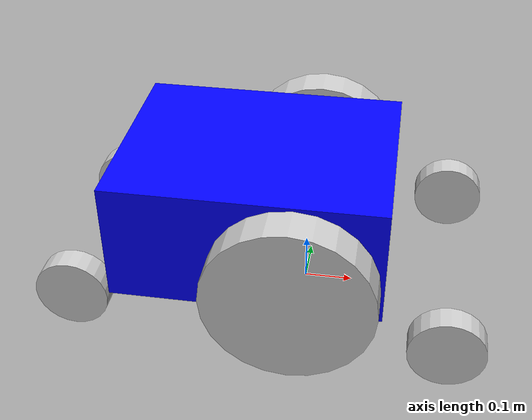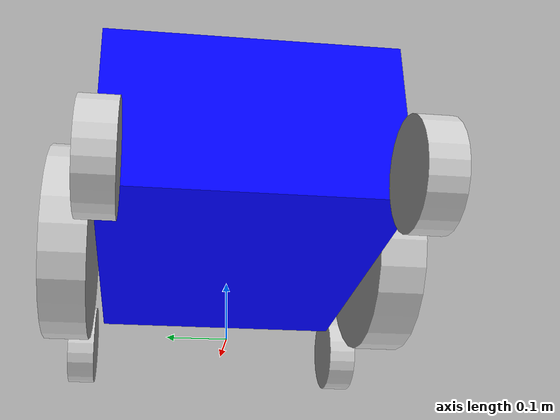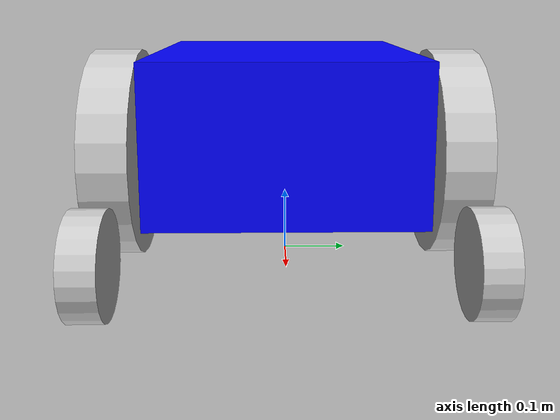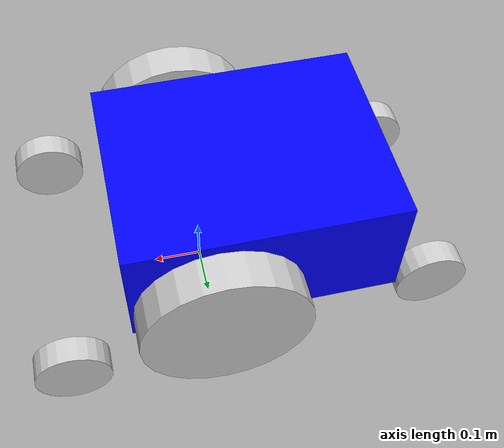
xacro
<?xml version="1.0"?>
<robot xmlns:xacro="http://www.ros.org/wiki/xacro">

    <!-- Imports -->
    <xacro:include filename="params.xacro" />
    <xacro:include filename="wheels.xacro" />
    <xacro:include filename="inertial_macros.xacro" />

    <!-- Materials -->
    <material name="plastic_shell">
        <color rgba="0 0 1 1" />
    </material>

    <!-- Base link -->
    <link name="base_footprint"></link>
    <link name="base_link"></link>

    <joint name="footprint_joint" type="fixed">
        <parent link="base_footprint"/>
        <child link="base_link"/>
        <origin xyz="0 0 ${drive_wheel_radius}"/>
    </joint>

    <!-- Chassis -->
    <link name="chassis">
        <visual>
            <origin xyz="0 0 0"/>
            <geometry>
                <box size="${chassis_length} ${chassis_width} ${chassis_height}"/>
            </geometry>
            <material name="plastic_shell"/>
        </visual>
        <collision>
            <origin xyz="0 0 0"/>
            <geometry>
                <box size="${chassis_length} ${chassis_width} ${chassis_height}"/>
            </geometry>
        </collision>
        <xacro:inertial_box mass="50.0" x="${chassis_length}" y="${chassis_width}" z="${chassis_height}">
            <origin xyz="0 0 0" rpy="0 0 0" />
        </xacro:inertial_box>
    </link>

    <joint name="chassis_joint" type="fixed">
        <parent link="base_link"/>
        <child link="chassis"/>
        <origin xyz="${chassis_X_offset} 0 ${chassis_height/2 - drive_wheel_radius + chassis_Z_offset}"/>
    </joint>

    <!-- Drive Wheels -->
    <xacro:drive_wheel name="drive_wheel_L"></xacro:drive_wheel>

    <joint name="drive_wheel_L_joint" type="continuous">
        <parent link="base_link"/>
        <child link="drive_wheel_L"/>
        <origin xyz="0 ${drive_wheels_Y_spacing/2} 0" rpy="0 0 0" />
        <axis xyz="0 1 0"/>
    </joint>

    <xacro:drive_wheel name="drive_wheel_R"></xacro:drive_wheel>

    <joint name="drive_wheel_R_joint" type="continuous">
        <parent link="base_link"/>
        <child link="drive_wheel_R"/>
        <origin xyz="0 -${drive_wheels_Y_spacing/2} 0" rpy="${pi} 0 0" />
        <axis xyz="0 -1 0"/>
    </joint>

    <!-- Caster Wheels -->
    <xacro:caster_wheel name="caster_wheel_FL"></xacro:caster_wheel>

    <joint name="caster_wheel_FL_joint" type="fixed">
        <parent link="base_link"/>
        <child link="caster_wheel_FL"/>
        <origin xyz="${caster_wheels_F_X_offset} ${caster_wheels_F_Y_spacing/2} ${-drive_wheel_radius + caster_wheel_radius + caster_wheel_Z_offset + 0.001}" rpy="0 0 0" />
    </joint>

    <xacro:caster_wheel name="caster_wheel_FR"></xacro:caster_wheel>

    <joint name="caster_wheel_FR_joint" type="fixed">
        <parent link="base_link"/>
        <child link="caster_wheel_FR"/>
        <origin xyz="${caster_wheels_F_X_offset} -${caster_wheels_F_Y_spacing/2} ${-drive_wheel_radius + caster_wheel_radius + caster_wheel_Z_offset + 0.001}" rpy="0 0 0" />
    </joint>

    <xacro:caster_wheel name="caster_wheel_RL"></xacro:caster_wheel>

    <joint name="caster_wheel_RL_joint" type="fixed">
        <parent link="base_link"/>
        <child link="caster_wheel_RL"/>
        <origin xyz="${caster_wheels_R_X_offset} ${caster_wheels_R_Y_spacing/2} ${-drive_wheel_radius + caster_wheel_radius + caster_wheel_Z_offset + 0.001}" rpy="0 0 0" />
    </joint>

    <xacro:caster_wheel name="caster_wheel_RR"></xacro:caster_wheel>

    <joint name="caster_wheel_RR_joint" type="fixed">
        <parent link="base_link"/>
        <child link="caster_wheel_RR"/>
        <origin xyz="${caster_wheels_R_X_offset} -${caster_wheels_R_Y_spacing/2} ${-drive_wheel_radius + caster_wheel_radius + caster_wheel_Z_offset + 0.001}" rpy="0 0 0" />
    </joint>

</robot>

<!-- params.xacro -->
<robot xmlns:xacro="http://www.ros.org/wiki/xacro">

    <!-- WHEELS -->
    <xacro:property name="drive_wheel_radius" value="0.1685" />
    <xacro:property name="drive_wheel_thickness" value="0.075" />
    <xacro:property name="caster_wheel_radius" value="0.075" />
    <xacro:property name="caster_wheel_thickness" value="0.05" />
    <xacro:property name="caster_wheel_X_offset" value="0.05" />
    <xacro:property name="caster_wheel_Z_offset" value="0.09" />

    <!-- DRIVEBASE -->
    <xacro:property name="chassis_width" value="0.43" />
    <xacro:property name="chassis_length" value="0.55" />
    <xacro:property name="chassis_height" value="0.25" />
    <xacro:property name="chassis_X_offset" value="-0.1" />
    <xacro:property name="chassis_Z_offset" value="0.08" />
    <xacro:property name="drive_wheels_Y_spacing" value="0.54" />
    <xacro:property name="caster_wheels_F_Y_spacing" value="0.52" />
    <xacro:property name="caster_wheels_R_Y_spacing" value="0.405" />
    <xacro:property name="caster_wheels_F_X_offset" value="0.35" />
    <xacro:property name="caster_wheels_R_X_offset" value="-0.4" />

    <!--LIDAR-->
    <xacro:property name="lidar_pole_length" value="0.0365" />
    <xacro:property name="lidar_pole_width" value="0.0365" />
    <xacro:property name="lidar_pole_height" value="1.041" />

    <xacro:property name="lidar_pole_x_offset" value="-0.267" />
    <xacro:property name="lidar_pole_y_offset" value="0.254" />
    <xacro:property name="lidar_pole_z_offset" value="${0.365-drive_wheel_radius}" />

    <xacro:property name="lidar_sensor_height" value="0.04" />
    <xacro:property name="lidar_sensor_radius" value="0.0375" />

    <xacro:property name="lidar_sensor_x_offset" value="0.0254" />
    <xacro:property name="lidar_sensor_y_offset" value="${-lidar_pole_width/2}" />
    <xacro:property name="lidar_sensor_z_offset" value="1.067" />

    <!-- CAMERA -->
    <xacro:property name="camera_length" value="0.09" />
    <xacro:property name="camera_width" value="0.024" />
    <xacro:property name="camera_height" value="0.025" />

    <xacro:property name="camera_x_offset" value="0" />
    <xacro:property name="camera_y_offset" value="-0.071" />
    <xacro:property name="camera_z_offset" value="${lidar_pole_height-0.06}" />
</robot>

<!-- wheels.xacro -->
<robot xmlns:xacro="http://www.ros.org/wiki/xacro">

    <!-- Imports -->
    <xacro:include filename="params.xacro" />

    <!-- Materials -->
    <material name="wheel_rubber">
        <color rgba="0.8 0.8 0.8 1" />
    </material>

    <!-- Macros -->
    <!-- Drive Wheels -->
    <xacro:macro name="drive_wheel" params="name">
        <link name="${name}">
            <visual>
                <origin xyz="0 0 0" rpy="-${pi/2} 0 0" />
                <geometry>
                    <cylinder radius="${drive_wheel_radius}" length="${drive_wheel_thickness}" />
                </geometry>
                <material name="wheel_rubber" />
            </visual>
            <collision>
                <origin xyz="0 0 0" rpy="-${pi/2} 0 0" />
                <geometry>
                    <sphere radius="${drive_wheel_radius}" />
                </geometry>
            </collision>
            <xacro:inertial_cylinder mass="2.0" radius="${drive_wheel_radius}" length="${drive_wheel_thickness}">
                <origin xyz="0 0 0" rpy="-${pi/2} 0 0" />
            </xacro:inertial_cylinder>
        </link>
    </xacro:macro>

    <!-- Caster Wheels -->
    <xacro:macro name="caster_wheel" params="name">
        <link name="${name}">
            <visual>
                <origin xyz="-${caster_wheel_X_offset} 0 -${caster_wheel_Z_offset}" rpy="-${pi/2} 0 0" />
                <geometry>
                    <cylinder radius="${caster_wheel_radius}" length="${caster_wheel_thickness}"/>
                </geometry>
                <material name="wheel_rubber" />
            </visual>
            <collision>
                <origin xyz="-${caster_wheel_X_offset} 0 -${caster_wheel_Z_offset}" rpy="-${pi/2} 0 0" />
                <geometry>
                    <sphere radius="${caster_wheel_radius}"/>
                </geometry>
            </collision>
            <xacro:inertial_cylinder mass="1.0" radius="${caster_wheel_radius}" length="${caster_wheel_thickness}">
                <origin xyz="-${caster_wheel_X_offset} 0 -${caster_wheel_Z_offset}" rpy="-${pi/2} 0 0" />
            </xacro:inertial_cylinder>
        </link>
    </xacro:macro>
</robot>
